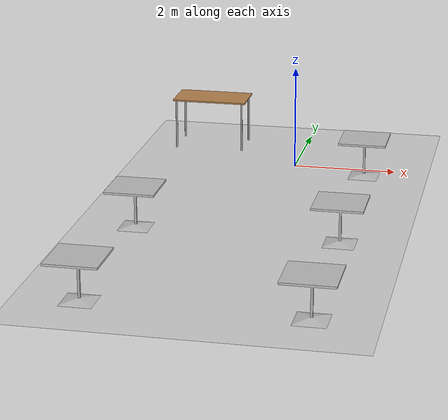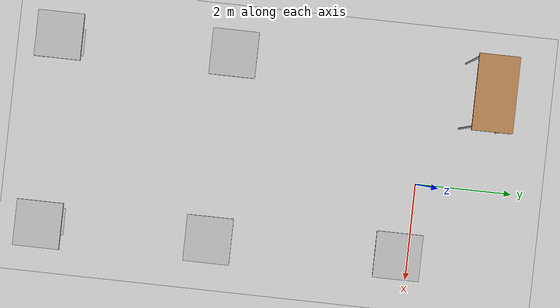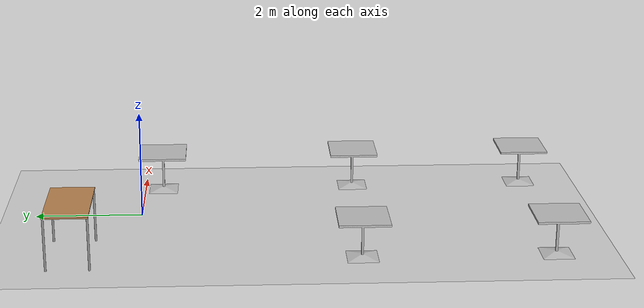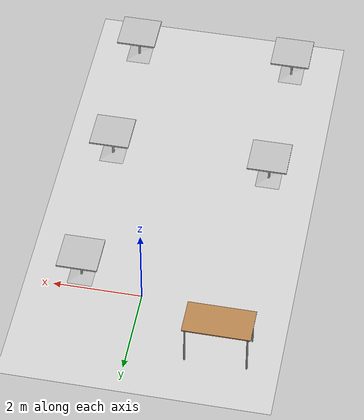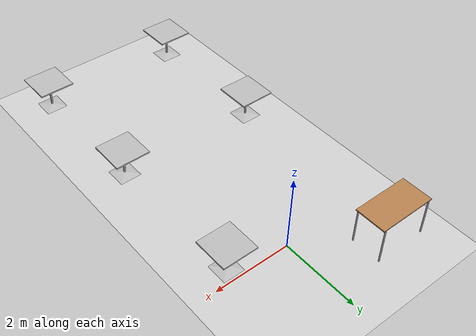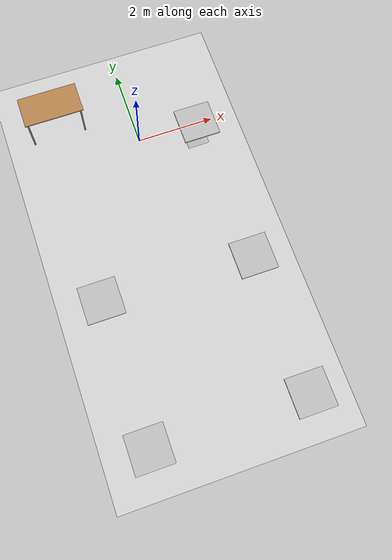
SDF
<sdf version="1.6">
 <world name="default">
  <model name="ground_plane">
   <static>1</static>
   <link name="link">
    <collision name="collision">
     <geometry><plane><normal>0 0 1</normal><size>100 100</size></plane></geometry>
     <surface><friction><ode><mu>100</mu><mu2>50</mu2></ode></friction></surface>
    </collision>
    <visual name="visual">
     <cast_shadows>0</cast_shadows>
     <geometry><plane><normal>0 0 1</normal><size>100 100</size></plane></geometry>
     <material>
      <script><uri>file://media/materials/scripts/gazebo.material</uri><name>Gazebo/Grey</name></script>
     </material>
    </visual>
   </link>
  </model>
  <light name="sun" type="directional">
   <pose>0 0 10 0 -0 0</pose>
   <diffuse>0.8 0.8 0.8 1</diffuse>
   <specular>0.2 0.2 0.2 1</specular>
   <attenuation>
    <range>1000</range>
    <constant>0.9</constant>
    <linear>0.01</linear>
    <quadratic>0.001</quadratic>
   </attenuation>
   <direction>-0.5 0.1 -0.9</direction>
  </light>
  <gravity>0 0 -9.8</gravity>
  <magnetic_field>6e-06 2.3e-05 -4.2e-05</magnetic_field>
  <atmosphere type="adiabatic"/>
  <physics name="default_physics" default="0" type="ode">
   <max_step_size>0.001</max_step_size>
   <real_time_factor>1</real_time_factor>
   <real_time_update_rate>1000</real_time_update_rate>
  </physics>
  <scene><ambient>0.4 0.4 0.4 1</ambient><background>0.7 0.7 0.7 1</background><shadows>1</shadows></scene>
  <spherical_coordinates>
   <surface_model>EARTH_WGS84</surface_model>
   <latitude_deg>0</latitude_deg>
   <longitude_deg>0</longitude_deg>
   <elevation>0</elevation>
   <heading_deg>0</heading_deg>
  </spherical_coordinates>
  <light name="user_point_light_0" type="point">
   <pose>-0.377046 6.2489 1 0 -0 0</pose>
   <diffuse>0.5 0.5 0.5 1</diffuse>
   <specular>0.1 0.1 0.1 1</specular>
   <attenuation>
    <range>20</range>
    <constant>0.5</constant>
    <linear>0.01</linear>
    <quadratic>0.001</quadratic>
   </attenuation>
   <cast_shadows>0</cast_shadows>
   <direction>0 0 -1</direction>
  </light>
  <light name="user_point_light_1" type="point">
   <pose>-0.001205 -5.74095 1 0 -0 0</pose>
   <diffuse>0.5 0.5 0.5 1</diffuse>
   <specular>0.1 0.1 0.1 1</specular>
   <attenuation>
    <range>20</range>
    <constant>0.5</constant>
    <linear>0.01</linear>
    <quadratic>0.001</quadratic>
   </attenuation>
   <cast_shadows>0</cast_shadows>
   <direction>0 0 -1</direction>
  </light>
  <model name="cafe_table">
   <static>1</static>
   <link name="link">
    <collision name="surface">
     <pose>0 0 0.755 0 -0 0</pose>
     <geometry><box><size>0.913 0.913 0.04</size></box></geometry>
    </collision>
    <collision name="column">
     <pose>0 0 0.37 0 -0 0</pose>
     <geometry><box><size>0.042 0.042 0.74</size></box></geometry>
    </collision>
    <collision name="base">
     <pose>0 0 0.02 0 -0 0</pose>
     <geometry><box><size>0.56 0.56 0.04</size></box></geometry>
    </collision>
    <visual name="visual">
     <geometry><mesh><uri>model://cafe_table/meshes/cafe_table.dae</uri></mesh></geometry>
    </visual>
   </link>
   <pose>-2.18269 -7.44634 0 0 -0 0</pose>
  </model>
  <model name="cafe_table_0">
   <static>1</static>
   <link name="link">
    <collision name="surface">
     <pose>0 0 0.755 0 -0 0</pose>
     <geometry><box><size>0.913 0.913 0.04</size></box></geometry>
    </collision>
    <collision name="column">
     <pose>0 0 0.37 0 -0 0</pose>
     <geometry><box><size>0.042 0.042 0.74</size></box></geometry>
    </collision>
    <collision name="base">
     <pose>0 0 0.02 0 -0 0</pose>
     <geometry><box><size>0.56 0.56 0.04</size></box></geometry>
    </collision>
    <visual name="visual">
     <geometry><mesh><uri>model://cafe_table/meshes/cafe_table.dae</uri></mesh></geometry>
    </visual>
   </link>
   <pose>1.56936 -7.46333 0 0 -0 0</pose>
  </model>
  <model name="cafe_table_1">
   <static>1</static>
   <link name="link">
    <collision name="surface">
     <pose>0 0 0.755 0 -0 0</pose>
     <geometry><box><size>0.913 0.913 0.04</size></box></geometry>
    </collision>
    <collision name="column">
     <pose>0 0 0.37 0 -0 0</pose>
     <geometry><box><size>0.042 0.042 0.74</size></box></geometry>
    </collision>
    <collision name="base">
     <pose>0 0 0.02 0 -0 0</pose>
     <geometry><box><size>0.56 0.56 0.04</size></box></geometry>
    </collision>
    <visual name="visual">
     <geometry><mesh><uri>model://cafe_table/meshes/cafe_table.dae</uri></mesh></geometry>
    </visual>
   </link>
   <pose>-2.19608 -3.98731 0 0 -0 0</pose>
  </model>
  <model name="cafe_table_2">
   <static>1</static>
   <link name="link">
    <collision name="surface">
     <pose>0 0 0.755 0 -0 0</pose>
     <geometry><box><size>0.913 0.913 0.04</size></box></geometry>
    </collision>
    <collision name="column">
     <pose>0 0 0.37 0 -0 0</pose>
     <geometry><box><size>0.042 0.042 0.74</size></box></geometry>
    </collision>
    <collision name="base">
     <pose>0 0 0.02 0 -0 0</pose>
     <geometry><box><size>0.56 0.56 0.04</size></box></geometry>
    </collision>
    <visual name="visual">
     <geometry><mesh><uri>model://cafe_table/meshes/cafe_table.dae</uri></mesh></geometry>
    </visual>
   </link>
   <pose>1.51338 -4.09935 0 0 -0 0</pose>
  </model>
  <model name="cafe_table_3">
   <static>1</static>
   <link name="link">
    <collision name="surface">
     <pose>0 0 0.755 0 -0 0</pose>
     <geometry><box><size>0.913 0.913 0.04</size></box></geometry>
    </collision>
    <collision name="column">
     <pose>0 0 0.37 0 -0 0</pose>
     <geometry><box><size>0.042 0.042 0.74</size></box></geometry>
    </collision>
    <collision name="base">
     <pose>0 0 0.02 0 -0 0</pose>
     <geometry><box><size>0.56 0.56 0.04</size></box></geometry>
    </collision>
    <visual name="visual">
     <geometry><mesh><uri>model://cafe_table/meshes/cafe_table.dae</uri></mesh></geometry>
    </visual>
   </link>
   <pose>1.43355 -0.349981 0 0 -0 0</pose>
  </model>
  <model name="table">
   <static>1</static>
   <link name="link">
    <collision name="surface">
     <pose>0 0 1 0 -0 0</pose>
     <geometry><box><size>1.5 0.8 0.03</size></box></geometry>
     <surface><friction><ode><mu>0.6</mu><mu2>0.6</mu2></ode></friction></surface>
    </collision>
    <visual name="visual1">
     <pose>0 0 1 0 -0 0</pose>
     <geometry><box><size>1.5 0.8 0.03</size></box></geometry>
     <material>
      <script><uri>file://media/materials/scripts/gazebo.material</uri><name>Gazebo/Wood</name></script>
     </material>
    </visual>
    <collision name="front_left_leg">
     <pose>0.68 0.38 0.5 0 -0 0</pose>
     <geometry><cylinder><radius>0.02</radius><length>1</length></cylinder></geometry>
    </collision>
    <visual name="front_left_leg">
     <pose>0.68 0.38 0.5 0 -0 0</pose>
     <geometry><cylinder><radius>0.02</radius><length>1</length></cylinder></geometry>
     <material>
      <script><uri>file://media/materials/scripts/gazebo.material</uri><name>Gazebo/Grey</name></script>
     </material>
    </visual>
    <collision name="front_right_leg">
     <pose>0.68 -0.38 0.5 0 -0 0</pose>
     <geometry><cylinder><radius>0.02</radius><length>1</length></cylinder></geometry>
    </collision>
    <visual name="front_right_leg">
     <pose>0.68 -0.38 0.5 0 -0 0</pose>
     <geometry><cylinder><radius>0.02</radius><length>1</length></cylinder></geometry>
     <material>
      <script><uri>file://media/materials/scripts/gazebo.material</uri><name>Gazebo/Grey</name></script>
     </material>
    </visual>
    <collision name="back_right_leg">
     <pose>-0.68 -0.38 0.5 0 -0 0</pose>
     <geometry><cylinder><radius>0.02</radius><length>1</length></cylinder></geometry>
    </collision>
    <visual name="back_right_leg">
     <pose>-0.68 -0.38 0.5 0 -0 0</pose>
     <geometry><cylinder><radius>0.02</radius><length>1</length></cylinder></geometry>
     <material>
      <script><uri>file://media/materials/scripts/gazebo.material</uri><name>Gazebo/Grey</name></script>
     </material>
    </visual>
    <collision name="back_left_leg">
     <pose>-0.68 0.38 0.5 0 -0 0</pose>
     <geometry><cylinder><radius>0.02</radius><length>1</length></cylinder></geometry>
    </collision>
    <visual name="back_left_leg">
     <pose>-0.68 0.38 0.5 0 -0 0</pose>
     <geometry><cylinder><radius>0.02</radius><length>1</length></cylinder></geometry>
     <material>
      <script><uri>file://media/materials/scripts/gazebo.material</uri><name>Gazebo/Grey</name></script>
     </material>
    </visual>
   </link>
   <pose>-1.93104 1.15665 0 0 -0 0</pose>
  </model>
 </world>
</sdf>
